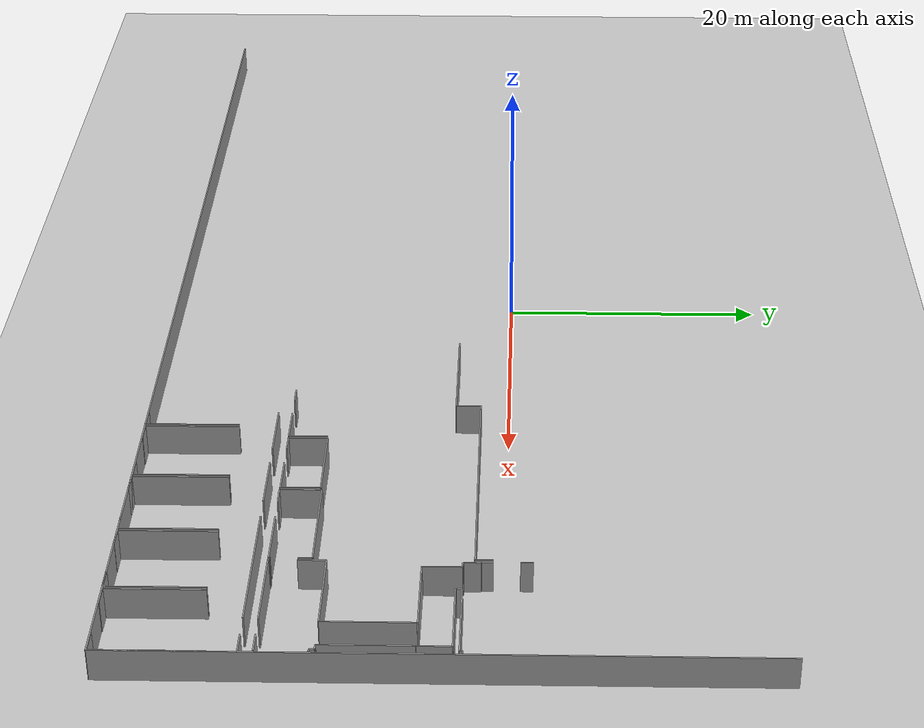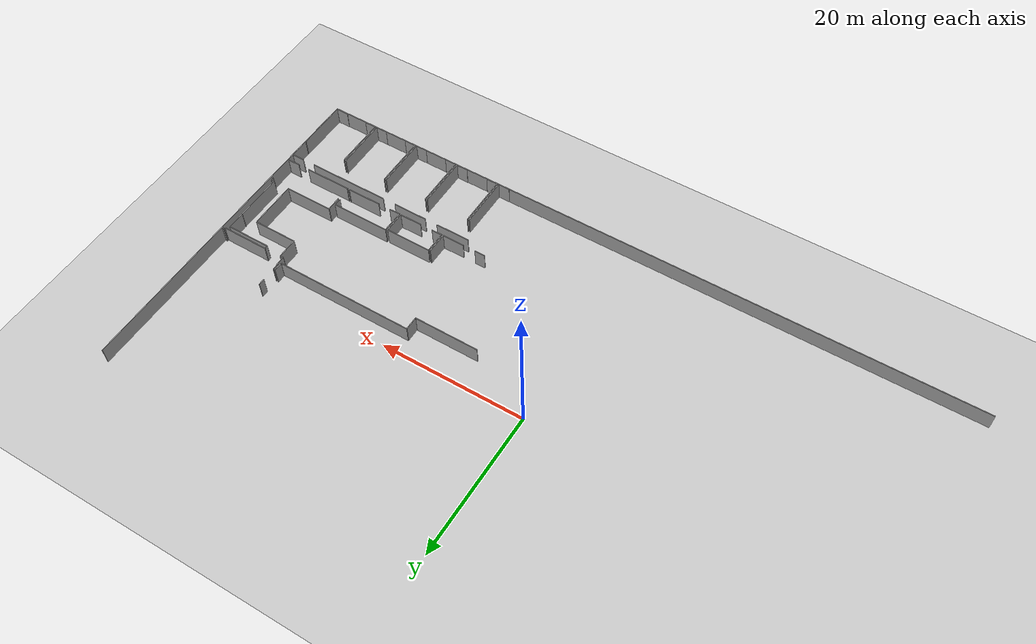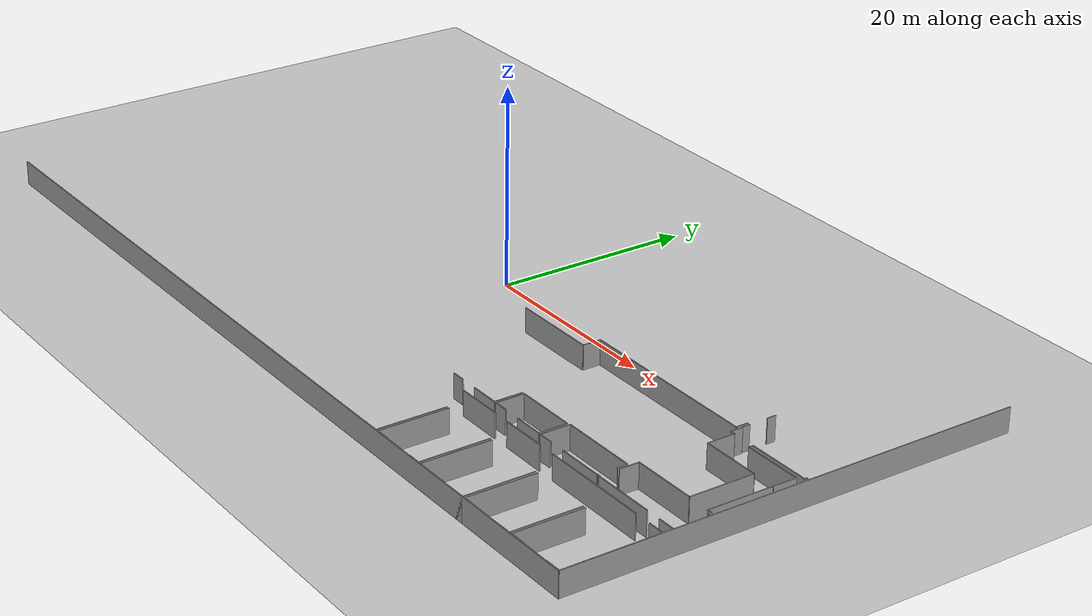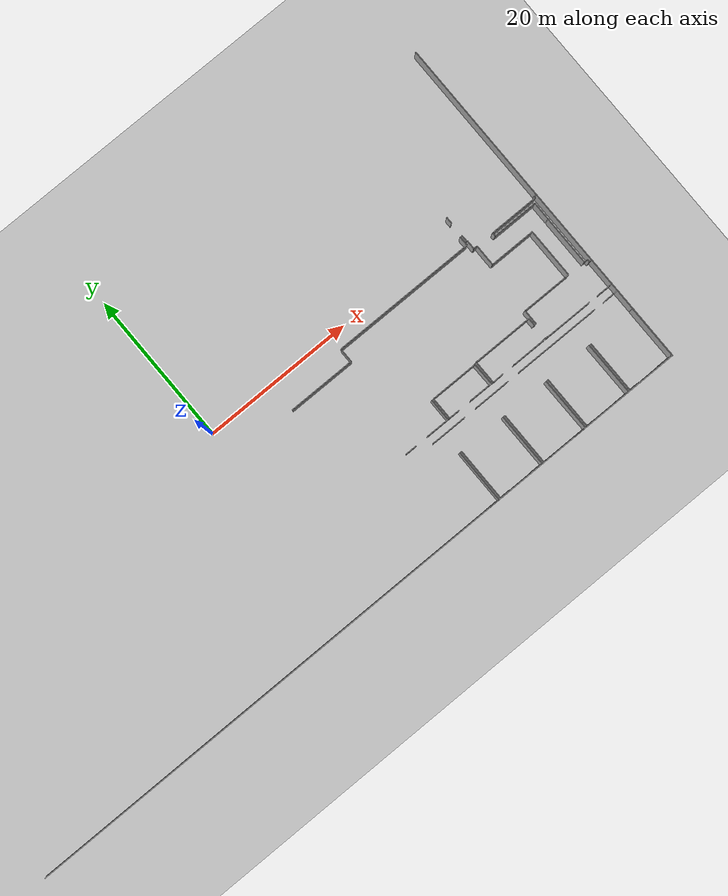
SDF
<sdf version="1.6">
 <world name="default">
  <model name="ground_plane">
   <static>1</static>
   <link name="link">
    <collision name="collision">
     <geometry><plane><normal>0 0 1</normal><size>100 100</size></plane></geometry>
     <surface><friction><ode><mu>100</mu><mu2>50</mu2></ode></friction></surface>
    </collision>
    <visual name="visual">
     <cast_shadows>0</cast_shadows>
     <geometry><plane><normal>0 0 1</normal><size>100 100</size></plane></geometry>
     <material>
      <script><uri>file://media/materials/scripts/gazebo.material</uri><name>Gazebo/Grey</name></script>
     </material>
    </visual>
   </link>
  </model>
  <model name="50045232">
   <static>1</static>
   <link name="Wall_223">
    <collision name="Wall_223_Collision">
     <geometry><box><size>4.76316875695 0.1 2.5</size></box></geometry>
     <pose>2.38158437847 0 1.25 0 0 0</pose>
    </collision>
    <visual name="Wall_223_Visual">
     <pose>2.38158437847 0 1.25 0 0 0</pose>
     <geometry><box><size>4.76316875695 0.1 2.5</size></box></geometry>
     <material>
      <script><uri>file://media/materials/scripts/gazebo.material</uri><name>Gazebo/Grey</name></script>
      <ambient>1 1 1 1</ambient>
     </material>
    </visual>
    <pose>65.7300523893 -36.6207969519 0 0 0 0.0</pose>
   </link>
   <link name="Wall_224">
    <collision name="Wall_224_Collision">
     <geometry><box><size>4.75377043975 0.1 2.5</size></box></geometry>
     <pose>2.37688521988 0 1.25 0 0 0</pose>
    </collision>
    <visual name="Wall_224_Visual">
     <pose>2.37688521988 0 1.25 0 0 0</pose>
     <geometry><box><size>4.75377043975 0.1 2.5</size></box></geometry>
     <material>
      <script><uri>file://media/materials/scripts/gazebo.material</uri><name>Gazebo/Grey</name></script>
      <ambient>1 1 1 1</ambient>
     </material>
    </visual>
    <pose>72.2602317828 -36.6207969519 0 0 0 0.0</pose>
   </link>
   <link name="Wall_225">
    <collision name="Wall_225_Collision">
     <geometry><box><size>11.2459755517 0.1 2.5</size></box></geometry>
     <pose>5.62298777584 0 1.25 0 0 0</pose>
    </collision>
    <visual name="Wall_225_Visual">
     <pose>5.62298777584 0 1.25 0 0 0</pose>
     <geometry><box><size>11.2459755517 0.1 2.5</size></box></geometry>
     <material>
      <script><uri>file://media/materials/scripts/gazebo.material</uri><name>Gazebo/Grey</name></script>
      <ambient>1 1 1 1</ambient>
     </material>
    </visual>
    <pose>78.8381647881 -36.6207969519 0 0 0 0.0</pose>
   </link>
   <link name="Wall_226">
    <collision name="Wall_226_Collision">
     <geometry><box><size>1.75596126369 0.1 2.5</size></box></geometry>
     <pose>0.877980631846 0 1.25 0 0 0</pose>
    </collision>
    <visual name="Wall_226_Visual">
     <pose>0.877980631846 0 1.25 0 0 0</pose>
     <geometry><box><size>1.75596126369 0.1 2.5</size></box></geometry>
     <material>
      <script><uri>file://media/materials/scripts/gazebo.material</uri><name>Gazebo/Grey</name></script>
      <ambient>1 1 1 1</ambient>
     </material>
    </visual>
    <pose>91.808858549 -36.6207969519 0 0 0 0.0</pose>
   </link>
   <link name="Wall_227">
    <collision name="Wall_227_Collision">
     <geometry><box><size>2.69071281156 0.1 2.5</size></box></geometry>
     <pose>1.34535640578 0 1.25 0 0 0</pose>
    </collision>
    <visual name="Wall_227_Visual">
     <pose>1.34535640578 0 1.25 0 0 0</pose>
     <geometry><box><size>2.69071281156 0.1 2.5</size></box></geometry>
     <material>
      <script><uri>file://media/materials/scripts/gazebo.material</uri><name>Gazebo/Grey</name></script>
      <ambient>1 1 1 1</ambient>
     </material>
    </visual>
    <pose>93.5648198127 -36.6207969519 0 0 0 -1.57079632679</pose>
   </link>
   <link name="Wall_249">
    <collision name="Wall_249_Collision">
     <geometry><box><size>1.59263375139 0.1 2.5</size></box></geometry>
     <pose>0.796316875695 0 1.25 0 0 0</pose>
    </collision>
    <visual name="Wall_249_Visual">
     <pose>0.796316875695 0 1.25 0 0 0</pose>
     <geometry><box><size>1.59263375139 0.1 2.5</size></box></geometry>
     <material>
      <script><uri>file://media/materials/scripts/gazebo.material</uri><name>Gazebo/Grey</name></script>
      <ambient>1 1 1 1</ambient>
     </material>
    </visual>
    <pose>67.3953325925 -46.4548658517 0 0 0 3.14159265359</pose>
   </link>
   <link name="Wall_252">
    <collision name="Wall_252_Collision">
     <geometry><box><size>7.06016828068 0.1 2.5</size></box></geometry>
     <pose>3.53008414034 0 1.25 0 0 0</pose>
    </collision>
    <visual name="Wall_252_Visual">
     <pose>3.53008414034 0 1.25 0 0 0</pose>
     <geometry><box><size>7.06016828068 0.1 2.5</size></box></geometry>
     <material>
      <script><uri>file://media/materials/scripts/gazebo.material</uri><name>Gazebo/Grey</name></script>
      <ambient>1 1 1 1</ambient>
     </material>
    </visual>
    <pose>67.3953325925 -39.394697571 0 0 0 -1.57079632679</pose>
   </link>
   <link name="Wall_253">
    <collision name="Wall_253_Collision">
     <geometry><box><size>1.5682489284 0.1 2.5</size></box></geometry>
     <pose>0.784124464201 0 1.25 0 0 0</pose>
    </collision>
    <visual name="Wall_253_Visual">
     <pose>0.784124464201 0 1.25 0 0 0</pose>
     <geometry><box><size>1.5682489284 0.1 2.5</size></box></geometry>
     <material>
      <script><uri>file://media/materials/scripts/gazebo.material</uri><name>Gazebo/Grey</name></script>
      <ambient>1 1 1 1</ambient>
     </material>
    </visual>
    <pose>73.9068423559 -46.4355612002 0 0 0 3.14159265359</pose>
   </link>
   <link name="Wall_254">
    <collision name="Wall_254_Collision">
     <geometry><box><size>1.57929830132 0.1 2.5</size></box></geometry>
     <pose>0.789649150659 0 1.25 0 0 0</pose>
    </collision>
    <visual name="Wall_254_Visual">
     <pose>0.789649150659 0 1.25 0 0 0</pose>
     <geometry><box><size>1.57929830132 0.1 2.5</size></box></geometry>
     <material>
      <script><uri>file://media/materials/scripts/gazebo.material</uri><name>Gazebo/Grey</name></script>
      <ambient>1 1 1 1</ambient>
     </material>
    </visual>
    <pose>69.2352436895 -46.4355612002 0 0 0 3.14159265359</pose>
   </link>
   <link name="Wall_255">
    <collision name="Wall_255_Collision">
     <geometry><box><size>7.05610414351 0.1 2.5</size></box></geometry>
     <pose>3.52805207176 0 1.25 0 0 0</pose>
    </collision>
    <visual name="Wall_255_Visual">
     <pose>3.52805207176 0 1.25 0 0 0</pose>
     <geometry><box><size>7.05610414351 0.1 2.5</size></box></geometry>
     <material>
      <script><uri>file://media/materials/scripts/gazebo.material</uri><name>Gazebo/Grey</name></script>
      <ambient>1 1 1 1</ambient>
     </material>
    </visual>
    <pose>67.6559453882 -46.4355612002 0 0 0 1.57079632679</pose>
   </link>
   <link name="Wall_256">
    <collision name="Wall_256_Collision">
     <geometry><box><size>7.05611797366 0.1 2.5</size></box></geometry>
     <pose>3.52805898683 0 1.25 0 0 0</pose>
    </collision>
    <visual name="Wall_256_Visual">
     <pose>3.52805898683 0 1.25 0 0 0</pose>
     <geometry><box><size>7.05611797366 0.1 2.5</size></box></geometry>
     <material>
      <script><uri>file://media/materials/scripts/gazebo.material</uri><name>Gazebo/Grey</name></script>
      <ambient>1 1 1 1</ambient>
     </material>
    </visual>
    <pose>73.8928718844 -39.3794570567 0 0 0 -1.5688164165</pose>
   </link>
   <link name="Wall_257">
    <collision name="Wall_257_Collision">
     <geometry><box><size>1.57739323702 0.1 2.5</size></box></geometry>
     <pose>0.788696618511 0 1.25 0 0 0</pose>
    </collision>
    <visual name="Wall_257_Visual">
     <pose>0.788696618511 0 1.25 0 0 0</pose>
     <geometry><box><size>1.57739323702 0.1 2.5</size></box></geometry>
     <material>
      <script><uri>file://media/materials/scripts/gazebo.material</uri><name>Gazebo/Grey</name></script>
      <ambient>1 1 1 1</ambient>
     </material>
    </visual>
    <pose>80.4272424194 -46.4701063661 0 0 0 3.14159265359</pose>
   </link>
   <link name="Wall_258">
    <collision name="Wall_258_Collision">
     <geometry><box><size>1.60482616288 0.1 2.5</size></box></geometry>
     <pose>0.802413081442 0 1.25 0 0 0</pose>
    </collision>
    <visual name="Wall_258_Visual">
     <pose>0.802413081442 0 1.25 0 0 0</pose>
     <geometry><box><size>1.60482616288 0.1 2.5</size></box></geometry>
     <material>
      <script><uri>file://media/materials/scripts/gazebo.material</uri><name>Gazebo/Grey</name></script>
      <ambient>1 1 1 1</ambient>
     </material>
    </visual>
    <pose>75.7698682331 -46.4701063661 0 0 0 3.14159265359</pose>
   </link>
   <link name="Wall_259">
    <collision name="Wall_259_Collision">
     <geometry><box><size>7.07515478647 0.1 2.5</size></box></geometry>
     <pose>3.53757739324 0 1.25 0 0 0</pose>
    </collision>
    <visual name="Wall_259_Visual">
     <pose>3.53757739324 0 1.25 0 0 0</pose>
     <geometry><box><size>7.07515478647 0.1 2.5</size></box></geometry>
     <material>
      <script><uri>file://media/materials/scripts/gazebo.material</uri><name>Gazebo/Grey</name></script>
      <ambient>1 1 1 1</ambient>
     </material>
    </visual>
    <pose>74.1650420702 -46.4701063661 0 0 0 1.57079632679</pose>
   </link>
   <link name="Wall_260">
    <collision name="Wall_260_Collision">
     <geometry><box><size>7.07526433104 0.1 2.5</size></box></geometry>
     <pose>3.53763216552 0 1.25 0 0 0</pose>
    </collision>
    <visual name="Wall_260_Visual">
     <pose>3.53763216552 0 1.25 0 0 0</pose>
     <geometry><box><size>7.07526433104 0.1 2.5</size></box></geometry>
     <material>
      <script><uri>file://media/materials/scripts/gazebo.material</uri><name>Gazebo/Grey</name></script>
      <ambient>1 1 1 1</ambient>
     </material>
    </visual>
    <pose>80.3878710906 -39.3949515796 0 0 0 -1.56523165385</pose>
   </link>
   <link name="Wall_261">
    <collision name="Wall_261_Collision">
     <geometry><box><size>1.57282108271 0.1 2.5</size></box></geometry>
     <pose>0.786410541356 0 1.25 0 0 0</pose>
    </collision>
    <visual name="Wall_261_Visual">
     <pose>0.786410541356 0 1.25 0 0 0</pose>
     <geometry><box><size>1.57282108271 0.1 2.5</size></box></geometry>
     <material>
      <script><uri>file://media/materials/scripts/gazebo.material</uri><name>Gazebo/Grey</name></script>
      <ambient>1 1 1 1</ambient>
     </material>
    </visual>
    <pose>86.9412922686 -46.4548658517 0 0 0 3.14159265359</pose>
   </link>
   <link name="Wall_262">
    <collision name="Wall_262_Collision">
     <geometry><box><size>1.60342911573 0.1 2.5</size></box></geometry>
     <pose>0.801714557866 0 1.25 0 0 0</pose>
    </collision>
    <visual name="Wall_262_Visual">
     <pose>0.801714557866 0 1.25 0 0 0</pose>
     <geometry><box><size>1.60342911573 0.1 2.5</size></box></geometry>
     <material>
      <script><uri>file://media/materials/scripts/gazebo.material</uri><name>Gazebo/Grey</name></script>
      <ambient>1 1 1 1</ambient>
     </material>
    </visual>
    <pose>82.2787109065 -46.4548658517 0 0 0 3.14159265359</pose>
   </link>
   <link name="Wall_263">
    <collision name="Wall_263_Collision">
     <geometry><box><size>7.07159866646 0.1 2.5</size></box></geometry>
     <pose>3.53579933323 0 1.25 0 0 0</pose>
    </collision>
    <visual name="Wall_263_Visual">
     <pose>3.53579933323 0 1.25 0 0 0</pose>
     <geometry><box><size>7.07159866646 0.1 2.5</size></box></geometry>
     <material>
      <script><uri>file://media/materials/scripts/gazebo.material</uri><name>Gazebo/Grey</name></script>
      <ambient>1 1 1 1</ambient>
     </material>
    </visual>
    <pose>80.6752817908 -46.4548658517 0 0 0 1.57079632679</pose>
   </link>
   <link name="Wall_264">
    <collision name="Wall_264_Collision">
     <geometry><box><size>7.07164292736 0.1 2.5</size></box></geometry>
     <pose>3.53582146368 0 1.25 0 0 0</pose>
    </collision>
    <visual name="Wall_264_Visual">
     <pose>3.53582146368 0 1.25 0 0 0</pose>
     <geometry><box><size>7.07164292736 0.1 2.5</size></box></geometry>
     <material>
      <script><uri>file://media/materials/scripts/gazebo.material</uri><name>Gazebo/Grey</name></script>
      <ambient>1 1 1 1</ambient>
     </material>
    </visual>
    <pose>86.9162724242 -39.3832671853 0 0 0 -1.56725826685</pose>
   </link>
   <link name="Wall_265">
    <collision name="Wall_265_Collision">
     <geometry><box><size>1.71176377203 0.1 2.5</size></box></geometry>
     <pose>0.855881886014 0 1.25 0 0 0</pose>
    </collision>
    <visual name="Wall_265_Visual">
     <pose>0.855881886014 0 1.25 0 0 0</pose>
     <geometry><box><size>1.71176377203 0.1 2.5</size></box></geometry>
     <material>
      <script><uri>file://media/materials/scripts/gazebo.material</uri><name>Gazebo/Grey</name></script>
      <ambient>1 1 1 1</ambient>
     </material>
    </visual>
    <pose>93.5537704398 -46.4245118273 0 0 0 3.14159265359</pose>
   </link>
   <link name="Wall_266">
    <collision name="Wall_266_Collision">
     <geometry><box><size>1.57231306557 0.1 2.5</size></box></geometry>
     <pose>0.786156532783 0 1.25 0 0 0</pose>
    </collision>
    <visual name="Wall_266_Visual">
     <pose>0.786156532783 0 1.25 0 0 0</pose>
     <geometry><box><size>1.57231306557 0.1 2.5</size></box></geometry>
     <material>
      <script><uri>file://media/materials/scripts/gazebo.material</uri><name>Gazebo/Grey</name></script>
      <ambient>1 1 1 1</ambient>
     </material>
    </visual>
    <pose>88.7625337355 -46.4245118273 0 0 0 3.14159265359</pose>
   </link>
   <link name="Wall_267">
    <collision name="Wall_267_Collision">
     <geometry><box><size>7.04391173202 0.1 2.5</size></box></geometry>
     <pose>3.52195586601 0 1.25 0 0 0</pose>
    </collision>
    <visual name="Wall_267_Visual">
     <pose>3.52195586601 0 1.25 0 0 0</pose>
     <geometry><box><size>7.04391173202 0.1 2.5</size></box></geometry>
     <material>
      <script><uri>file://media/materials/scripts/gazebo.material</uri><name>Gazebo/Grey</name></script>
      <ambient>1 1 1 1</ambient>
     </material>
    </visual>
    <pose>87.1902206699 -46.4245118273 0 0 0 1.57079632679</pose>
   </link>
   <link name="Wall_268">
    <collision name="Wall_268_Collision">
     <geometry><box><size>7.0439208013 0.1 2.5</size></box></geometry>
     <pose>3.52196040065 0 1.25 0 0 0</pose>
    </collision>
    <visual name="Wall_268_Visual">
     <pose>3.52196040065 0 1.25 0 0 0</pose>
     <geometry><box><size>7.0439208013 0.1 2.5</size></box></geometry>
     <material>
      <script><uri>file://media/materials/scripts/gazebo.material</uri><name>Gazebo/Grey</name></script>
      <ambient>1 1 1 1</ambient>
     </material>
    </visual>
    <pose>93.5424670583 -39.3806000953 0 0 0 -1.56919162585</pose>
   </link>
   <link name="Wall_269">
    <collision name="Wall_269_Collision">
     <geometry><box><size>0.101984441975 0.1 2.5</size></box></geometry>
     <pose>0.0509922209875 0 1.25 0 0 0</pose>
    </collision>
    <visual name="Wall_269_Visual">
     <pose>0.0509922209875 0 1.25 0 0 0</pose>
     <geometry><box><size>0.101984441975 0.1 2.5</size></box></geometry>
     <material>
      <script><uri>file://media/materials/scripts/gazebo.material</uri><name>Gazebo/Grey</name></script>
      <ambient>1 1 1 1</ambient>
     </material>
    </visual>
    <pose>83.8042863947 -35.595999365 0 0 0 1.57079632679</pose>
   </link>
   <link name="Wall_270">
    <collision name="Wall_270_Collision">
     <geometry><box><size>2.01250992221 0.1 2.5</size></box></geometry>
     <pose>1.0062549611 0 1.25 0 0 0</pose>
    </collision>
    <visual name="Wall_270_Visual">
     <pose>1.0062549611 0 1.25 0 0 0</pose>
     <geometry><box><size>2.01250992221 0.1 2.5</size></box></geometry>
     <material>
      <script><uri>file://media/materials/scripts/gazebo.material</uri><name>Gazebo/Grey</name></script>
      <ambient>1 1 1 1</ambient>
     </material>
    </visual>
    <pose>83.8042863947 -33.5912367042 0 0 0 1.57079632679</pose>
   </link>
   <link name="Wall_271">
    <collision name="Wall_271_Collision">
     <geometry><box><size>6.59101444674 0.1 2.5</size></box></geometry>
     <pose>3.29550722337 0 1.25 0 0 0</pose>
    </collision>
    <visual name="Wall_271_Visual">
     <pose>3.29550722337 0 1.25 0 0 0</pose>
     <geometry><box><size>6.59101444674 0.1 2.5</size></box></geometry>
     <material>
      <script><uri>file://media/materials/scripts/gazebo.material</uri><name>Gazebo/Grey</name></script>
      <ambient>1 1 1 1</ambient>
     </material>
    </visual>
    <pose>83.8042863947 -31.578726782 0 0 0 0.0</pose>
   </link>
   <link name="Wall_272">
    <collision name="Wall_272_Collision">
     <geometry><box><size>6.51138275917 0.1 2.5</size></box></geometry>
     <pose>3.25569137958 0 1.25 0 0 0</pose>
    </collision>
    <visual name="Wall_272_Visual">
     <pose>3.25569137958 0 1.25 0 0 0</pose>
     <geometry><box><size>6.51138275917 0.1 2.5</size></box></geometry>
     <material>
      <script><uri>file://media/materials/scripts/gazebo.material</uri><name>Gazebo/Grey</name></script>
      <ambient>1 1 1 1</ambient>
     </material>
    </visual>
    <pose>90.3953008414 -31.578726782 0 0 0 1.57079632679</pose>
   </link>
   <link name="Wall_273">
    <collision name="Wall_273_Collision">
     <geometry><box><size>6.54072074933 0.1 2.5</size></box></geometry>
     <pose>3.27036037466 0 1.25 0 0 0</pose>
    </collision>
    <visual name="Wall_273_Visual">
     <pose>3.27036037466 0 1.25 0 0 0</pose>
     <geometry><box><size>6.54072074933 0.1 2.5</size></box></geometry>
     <material>
      <script><uri>file://media/materials/scripts/gazebo.material</uri><name>Gazebo/Grey</name></script>
      <ambient>1 1 1 1</ambient>
     </material>
    </visual>
    <pose>92.7688839498 -25.0673440229 0 0 0 -1.57079632679</pose>
   </link>
   <link name="Wall_274">
    <collision name="Wall_274_Collision">
     <geometry><box><size>0.459120495317 0.1 2.5</size></box></geometry>
     <pose>0.229560247658 0 1.25 0 0 0</pose>
    </collision>
    <visual name="Wall_274_Visual">
     <pose>0.229560247658 0 1.25 0 0 0</pose>
     <geometry><box><size>0.459120495317 0.1 2.5</size></box></geometry>
     <material>
      <script><uri>file://media/materials/scripts/gazebo.material</uri><name>Gazebo/Grey</name></script>
      <ambient>1 1 1 1</ambient>
     </material>
    </visual>
    <pose>92.7688839498 -31.6080647722 0 0 0 0.0</pose>
   </link>
   <link name="Wall_275">
    <collision name="Wall_275_Collision">
     <geometry><box><size>0.368312430545 0.1 2.5</size></box></geometry>
     <pose>0.184156215272 0 1.25 0 0 0</pose>
    </collision>
    <visual name="Wall_275_Visual">
     <pose>0.184156215272 0 1.25 0 0 0</pose>
     <geometry><box><size>0.368312430545 0.1 2.5</size></box></geometry>
     <material>
      <script><uri>file://media/materials/scripts/gazebo.material</uri><name>Gazebo/Grey</name></script>
      <ambient>1 1 1 1</ambient>
     </material>
    </visual>
    <pose>93.2280044452 -31.6080647722 0 0 0 -1.57079632679</pose>
   </link>
   <link name="Wall_276">
    <collision name="Wall_276_Collision">
     <geometry><box><size>0.227337672646 0.1 2.5</size></box></geometry>
     <pose>0.113668836323 0 1.25 0 0 0</pose>
    </collision>
    <visual name="Wall_276_Visual">
     <pose>0.113668836323 0 1.25 0 0 0</pose>
     <geometry><box><size>0.227337672646 0.1 2.5</size></box></geometry>
     <material>
      <script><uri>file://media/materials/scripts/gazebo.material</uri><name>Gazebo/Grey</name></script>
      <ambient>1 1 1 1</ambient>
     </material>
    </visual>
    <pose>93.2280044452 -31.9763772027 0 0 0 0.0</pose>
   </link>
   <link name="Wall_277">
    <collision name="Wall_277_Collision">
     <geometry><box><size>1.69017304334 0.1 2.5</size></box></geometry>
     <pose>0.84508652167 0 1.25 0 0 0</pose>
    </collision>
    <visual name="Wall_277_Visual">
     <pose>0.84508652167 0 1.25 0 0 0</pose>
     <geometry><box><size>1.69017304334 0.1 2.5</size></box></geometry>
     <material>
      <script><uri>file://media/materials/scripts/gazebo.material</uri><name>Gazebo/Grey</name></script>
      <ambient>1 1 1 1</ambient>
     </material>
    </visual>
    <pose>93.4553421178 -35.5953643435 0 0 0 3.14159265359</pose>
   </link>
   <link name="Wall_278">
    <collision name="Wall_278_Collision">
     <geometry><box><size>6.39212576579 0.1 2.5</size></box></geometry>
     <pose>3.19606288289 0 1.25 0 0 0</pose>
    </collision>
    <visual name="Wall_278_Visual">
     <pose>3.19606288289 0 1.25 0 0 0</pose>
     <geometry><box><size>6.39212576579 0.1 2.5</size></box></geometry>
     <material>
      <script><uri>file://media/materials/scripts/gazebo.material</uri><name>Gazebo/Grey</name></script>
      <ambient>1 1 1 1</ambient>
     </material>
    </visual>
    <pose>90.1964121289 -35.5953643435 0 0 0 -3.14149330926</pose>
   </link>
   <link name="Wall_279">
    <collision name="Wall_279_Collision">
     <geometry><box><size>3.05915224639 0.1 2.5</size></box></geometry>
     <pose>1.52957612319 0 1.25 0 0 0</pose>
    </collision>
    <visual name="Wall_279_Visual">
     <pose>1.52957612319 0 1.25 0 0 0</pose>
     <geometry><box><size>3.05915224639 0.1 2.5</size></box></geometry>
     <material>
      <script><uri>file://media/materials/scripts/gazebo.material</uri><name>Gazebo/Grey</name></script>
      <ambient>1 1 1 1</ambient>
     </material>
    </visual>
    <pose>75.5965073821 -35.6125099222 0 0 0 1.57079632679</pose>
   </link>
   <link name="Wall_280">
    <collision name="Wall_280_Collision">
     <geometry><box><size>7.95161136688 0.1 2.5</size></box></geometry>
     <pose>3.97580568344 0 1.25 0 0 0</pose>
    </collision>
    <visual name="Wall_280_Visual">
     <pose>3.97580568344 0 1.25 0 0 0</pose>
     <geometry><box><size>7.95161136688 0.1 2.5</size></box></geometry>
     <material>
      <script><uri>file://media/materials/scripts/gazebo.material</uri><name>Gazebo/Grey</name></script>
      <ambient>1 1 1 1</ambient>
     </material>
    </visual>
    <pose>75.5965073821 -32.5533576758 0 0 0 0.0</pose>
   </link>
   <link name="Wall_281">
    <collision name="Wall_281_Collision">
     <geometry><box><size>1.01603429116 0.1 2.5</size></box></geometry>
     <pose>0.508017145579 0 1.25 0 0 0</pose>
    </collision>
    <visual name="Wall_281_Visual">
     <pose>0.508017145579 0 1.25 0 0 0</pose>
     <geometry><box><size>1.01603429116 0.1 2.5</size></box></geometry>
     <material>
      <script><uri>file://media/materials/scripts/gazebo.material</uri><name>Gazebo/Grey</name></script>
      <ambient>1 1 1 1</ambient>
     </material>
    </visual>
    <pose>83.548118749 -32.5533576758 0 0 0 -1.57079632679</pose>
   </link>
   <link name="Wall_282">
    <collision name="Wall_282_Collision">
     <geometry><box><size>0.114684870614 0.1 2.5</size></box></geometry>
     <pose>0.0573424353072 0 1.25 0 0 0</pose>
    </collision>
    <visual name="Wall_282_Visual">
     <pose>0.0573424353072 0 1.25 0 0 0</pose>
     <geometry><box><size>0.114684870614 0.1 2.5</size></box></geometry>
     <material>
      <script><uri>file://media/materials/scripts/gazebo.material</uri><name>Gazebo/Grey</name></script>
      <ambient>1 1 1 1</ambient>
     </material>
    </visual>
    <pose>83.548118749 -35.4665819971 0 0 0 -1.57079632679</pose>
   </link>
   <link name="Wall_283">
    <collision name="Wall_283_Collision">
     <geometry><box><size>4.74500714399 0.1 2.5</size></box></geometry>
     <pose>2.372503572 0 1.25 0 0 0</pose>
    </collision>
    <visual name="Wall_283_Visual">
     <pose>2.372503572 0 1.25 0 0 0</pose>
     <geometry><box><size>4.74500714399 0.1 2.5</size></box></geometry>
     <material>
      <script><uri>file://media/materials/scripts/gazebo.material</uri><name>Gazebo/Grey</name></script>
      <ambient>1 1 1 1</ambient>
     </material>
    </visual>
    <pose>83.548118749 -35.5812668678 0 0 0 3.14159265359</pose>
   </link>
   <link name="Wall_284">
    <collision name="Wall_284_Collision">
     <geometry><box><size>1.49529389098 0.1 2.5</size></box></geometry>
     <pose>0.747646945492 0 1.25 0 0 0</pose>
    </collision>
    <visual name="Wall_284_Visual">
     <pose>0.747646945492 0 1.25 0 0 0</pose>
     <geometry><box><size>1.49529389098 0.1 2.5</size></box></geometry>
     <material>
      <script><uri>file://media/materials/scripts/gazebo.material</uri><name>Gazebo/Grey</name></script>
      <ambient>1 1 1 1</ambient>
     </material>
    </visual>
    <pose>77.0914748373 -35.5812668678 0 0 0 -3.12069687625</pose>
   </link>
   <link name="Wall_285">
    <collision name="Wall_285_Collision">
     <geometry><box><size>3.08264803937 0.1 2.5</size></box></geometry>
     <pose>1.54132401969 0 1.25 0 0 0</pose>
    </collision>
    <visual name="Wall_285_Visual">
     <pose>1.54132401969 0 1.25 0 0 0</pose>
     <geometry><box><size>3.08264803937 0.1 2.5</size></box></geometry>
     <material>
      <script><uri>file://media/materials/scripts/gazebo.material</uri><name>Gazebo/Grey</name></script>
      <ambient>1 1 1 1</ambient>
     </material>
    </visual>
    <pose>75.352532148 -35.5708525163 0 0 0 3.14159265359</pose>
   </link>
   <link name="Wall_286">
    <collision name="Wall_286_Collision">
     <geometry><box><size>1.45013494205 0.1 2.5</size></box></geometry>
     <pose>0.725067471027 0 1.25 0 0 0</pose>
    </collision>
    <visual name="Wall_286_Visual">
     <pose>0.725067471027 0 1.25 0 0 0</pose>
     <geometry><box><size>1.45013494205 0.1 2.5</size></box></geometry>
     <material>
      <script><uri>file://media/materials/scripts/gazebo.material</uri><name>Gazebo/Grey</name></script>
      <ambient>1 1 1 1</ambient>
     </material>
    </visual>
    <pose>70.5125257977 -35.5708525163 0 0 0 3.14159265359</pose>
   </link>
   <link name="Wall_287">
    <collision name="Wall_287_Collision">
     <geometry><box><size>2.90763613272 0.1 2.5</size></box></geometry>
     <pose>1.45381806636 0 1.25 0 0 0</pose>
    </collision>
    <visual name="Wall_287_Visual">
     <pose>1.45381806636 0 1.25 0 0 0</pose>
     <geometry><box><size>2.90763613272 0.1 2.5</size></box></geometry>
     <material>
      <script><uri>file://media/materials/scripts/gazebo.material</uri><name>Gazebo/Grey</name></script>
      <ambient>1 1 1 1</ambient>
     </material>
    </visual>
    <pose>69.0623908557 -35.5708525163 0 0 0 1.57079632679</pose>
   </link>
   <link name="Wall_288">
    <collision name="Wall_288_Collision">
     <geometry><box><size>6.25724718209 0.1 2.5</size></box></geometry>
     <pose>3.12862359105 0 1.25 0 0 0</pose>
    </collision>
    <visual name="Wall_288_Visual">
     <pose>3.12862359105 0 1.25 0 0 0</pose>
     <geometry><box><size>6.25724718209 0.1 2.5</size></box></geometry>
     <material>
      <script><uri>file://media/materials/scripts/gazebo.material</uri><name>Gazebo/Grey</name></script>
      <ambient>1 1 1 1</ambient>
     </material>
    </visual>
    <pose>69.0623908557 -32.6632163836 0 0 0 0.0</pose>
   </link>
   <link name="Wall_289">
    <collision name="Wall_289_Collision">
     <geometry><box><size>2.90782219243 0.1 2.5</size></box></geometry>
     <pose>1.45391109621 0 1.25 0 0 0</pose>
    </collision>
    <visual name="Wall_289_Visual">
     <pose>1.45391109621 0 1.25 0 0 0</pose>
     <geometry><box><size>2.90782219243 0.1 2.5</size></box></geometry>
     <material>
      <script><uri>file://media/materials/scripts/gazebo.material</uri><name>Gazebo/Grey</name></script>
      <ambient>1 1 1 1</ambient>
     </material>
    </visual>
    <pose>75.3196380378 -32.6632163836 0 0 0 -1.55948380161</pose>
   </link>
   <link name="Wall_290">
    <collision name="Wall_290_Collision">
     <geometry><box><size>3.05305604064 0.1 2.5</size></box></geometry>
     <pose>1.52652802032 0 1.25 0 0 0</pose>
    </collision>
    <visual name="Wall_290_Visual">
     <pose>1.52652802032 0 1.25 0 0 0</pose>
     <geometry><box><size>3.05305604064 0.1 2.5</size></box></geometry>
     <material>
      <script><uri>file://media/materials/scripts/gazebo.material</uri><name>Gazebo/Grey</name></script>
      <ambient>1 1 1 1</ambient>
     </material>
    </visual>
    <pose>68.8133354501 -35.5750436577 0 0 0 3.14159265359</pose>
   </link>
   <link name="Wall_291">
    <collision name="Wall_291_Collision">
     <geometry><box><size>1.43629147484 0.1 2.5</size></box></geometry>
     <pose>0.718145737419 0 1.25 0 0 0</pose>
    </collision>
    <visual name="Wall_291_Visual">
     <pose>0.718145737419 0 1.25 0 0 0</pose>
     <geometry><box><size>1.43629147484 0.1 2.5</size></box></geometry>
     <material>
      <script><uri>file://media/materials/scripts/gazebo.material</uri><name>Gazebo/Grey</name></script>
      <ambient>1 1 1 1</ambient>
     </material>
    </visual>
    <pose>64.0156215272 -35.5750436577 0 0 0 3.14159265359</pose>
   </link>
   <link name="Wall_294">
    <collision name="Wall_294_Collision">
     <geometry><box><size>2.92745144893 0.1 2.5</size></box></geometry>
     <pose>1.46372572446 0 1.25 0 0 0</pose>
    </collision>
    <visual name="Wall_294_Visual">
     <pose>1.46372572446 0 1.25 0 0 0</pose>
     <geometry><box><size>2.92745144893 0.1 2.5</size></box></geometry>
     <material>
      <script><uri>file://media/materials/scripts/gazebo.material</uri><name>Gazebo/Grey</name></script>
      <ambient>1 1 1 1</ambient>
     </material>
    </visual>
    <pose>68.8172725829 -32.6475948563 0 0 0 -1.57214122837</pose>
   </link>
   <link name="Wall_326">
    <collision name="Wall_326_Collision">
     <geometry><box><size>6.01187490078 0.1 2.5</size></box></geometry>
     <pose>3.00593745039 0 1.25 0 0 0</pose>
    </collision>
    <visual name="Wall_326_Visual">
     <pose>3.00593745039 0 1.25 0 0 0</pose>
     <geometry><box><size>6.01187490078 0.1 2.5</size></box></geometry>
     <material>
      <script><uri>file://media/materials/scripts/gazebo.material</uri><name>Gazebo/Grey</name></script>
      <ambient>1 1 1 1</ambient>
     </material>
    </visual>
    <pose>90.3881886014 -25.0167963169 0 0 0 3.14159265359</pose>
   </link>
   <link name="Wall_327">
    <collision name="Wall_327_Collision">
     <geometry><box><size>2.81149388792 0.1 2.5</size></box></geometry>
     <pose>1.40574694396 0 1.25 0 0 0</pose>
    </collision>
    <visual name="Wall_327_Visual">
     <pose>1.40574694396 0 1.25 0 0 0</pose>
     <geometry><box><size>2.81149388792 0.1 2.5</size></box></geometry>
     <material>
      <script><uri>file://media/materials/scripts/gazebo.material</uri><name>Gazebo/Grey</name></script>
      <ambient>1 1 1 1</ambient>
     </material>
    </visual>
    <pose>84.3763137006 -25.0167963169 0 0 0 1.57079632679</pose>
   </link>
   <link name="Wall_328">
    <collision name="Wall_328_Collision">
     <geometry><box><size>0.47486902683 0.1 2.5</size></box></geometry>
     <pose>0.237434513415 0 1.25 0 0 0</pose>
    </collision>
    <visual name="Wall_328_Visual">
     <pose>0.237434513415 0 1.25 0 0 0</pose>
     <geometry><box><size>0.47486902683 0.1 2.5</size></box></geometry>
     <material>
      <script><uri>file://media/materials/scripts/gazebo.material</uri><name>Gazebo/Grey</name></script>
      <ambient>1 1 1 1</ambient>
     </material>
    </visual>
    <pose>84.3763137006 -22.205302429 0 0 0 3.14159265359</pose>
   </link>
   <link name="Wall_329">
    <collision name="Wall_329_Collision">
     <geometry><box><size>1.2368947452 0.1 2.5</size></box></geometry>
     <pose>0.618447372599 0 1.25 0 0 0</pose>
    </collision>
    <visual name="Wall_329_Visual">
     <pose>0.618447372599 0 1.25 0 0 0</pose>
     <geometry><box><size>1.2368947452 0.1 2.5</size></box></geometry>
     <material>
      <script><uri>file://media/materials/scripts/gazebo.material</uri><name>Gazebo/Grey</name></script>
      <ambient>1 1 1 1</ambient>
     </material>
    </visual>
    <pose>83.9014446738 -22.205302429 0 0 0 1.57079632679</pose>
   </link>
   <link name="Wall_330">
    <collision name="Wall_330_Collision">
     <geometry><box><size>0.077218606128 0.1 2.5</size></box></geometry>
     <pose>0.038609303064 0 1.25 0 0 0</pose>
    </collision>
    <visual name="Wall_330_Visual">
     <pose>0.038609303064 0 1.25 0 0 0</pose>
     <geometry><box><size>0.077218606128 0.1 2.5</size></box></geometry>
     <material>
      <script><uri>file://media/materials/scripts/gazebo.material</uri><name>Gazebo/Grey</name></script>
      <ambient>1 1 1 1</ambient>
     </material>
    </visual>
    <pose>83.9014446738 -20.9684076838 0 0 0 3.14159265359</pose>
   </link>
   <link name="Wall_331">
    <collision name="Wall_331_Collision">
     <geometry><box><size>0.839371328782 0.1 2.5</size></box></geometry>
     <pose>0.419685664391 0 1.25 0 0 0</pose>
    </collision>
    <visual name="Wall_331_Visual">
     <pose>0.419685664391 0 1.25 0 0 0</pose>
     <geometry><box><size>0.839371328782 0.1 2.5</size></box></geometry>
     <material>
      <script><uri>file://media/materials/scripts/gazebo.material</uri><name>Gazebo/Grey</name></script>
      <ambient>1 1 1 1</ambient>
     </material>
    </visual>
    <pose>83.8242260676 -20.9684076838 0 0 0 1.57079632679</pose>
   </link>
   <link name="Wall_332">
    <collision name="Wall_332_Collision">
     <geometry><box><size>0.893094141927 0.1 2.5</size></box></geometry>
     <pose>0.446547070964 0 1.25 0 0 0</pose>
    </collision>
    <visual name="Wall_332_Visual">
     <pose>0.446547070964 0 1.25 0 0 0</pose>
     <geometry><box><size>0.893094141927 0.1 2.5</size></box></geometry>
     <material>
      <script><uri>file://media/materials/scripts/gazebo.material</uri><name>Gazebo/Grey</name></script>
      <ambient>1 1 1 1</ambient>
     </material>
    </visual>
    <pose>83.8242260676 -18.2655024607 0 0 0 1.57079632679</pose>
   </link>
   <link name="Wall_335">
    <collision name="Wall_335_Collision">
     <geometry><box><size>0.22086045404 0.1 2.5</size></box></geometry>
     <pose>0.11043022702 0 1.25 0 0 0</pose>
    </collision>
    <visual name="Wall_335_Visual">
     <pose>0.11043022702 0 1.25 0 0 0</pose>
     <geometry><box><size>0.22086045404 0.1 2.5</size></box></geometry>
     <material>
      <script><uri>file://media/materials/scripts/gazebo.material</uri><name>Gazebo/Grey</name></script>
      <ambient>1 1 1 1</ambient>
     </material>
    </visual>
    <pose>93.4434037149 -21.973392602 0 0 0 3.14159265359</pose>
   </link>
   <link name="Wall_336">
    <collision name="Wall_336_Collision">
     <geometry><box><size>0.209811081124 0.1 2.5</size></box></geometry>
     <pose>0.104905540562 0 1.25 0 0 0</pose>
    </collision>
    <visual name="Wall_336_Visual">
     <pose>0.104905540562 0 1.25 0 0 0</pose>
     <geometry><box><size>0.209811081124 0.1 2.5</size></box></geometry>
     <material>
      <script><uri>file://media/materials/scripts/gazebo.material</uri><name>Gazebo/Grey</name></script>
      <ambient>1 1 1 1</ambient>
     </material>
    </visual>
    <pose>93.2225432608 -21.973392602 0 0 0 -1.57079632679</pose>
   </link>
   <link name="Wall_337">
    <collision name="Wall_337_Collision">
     <geometry><box><size>6.45118272742 0.1 2.5</size></box></geometry>
     <pose>3.22559136371 0 1.25 0 0 0</pose>
    </collision>
    <visual name="Wall_337_Visual">
     <pose>3.22559136371 0 1.25 0 0 0</pose>
     <geometry><box><size>6.45118272742 0.1 2.5</size></box></geometry>
     <material>
      <script><uri>file://media/materials/scripts/gazebo.material</uri><name>Gazebo/Grey</name></script>
      <ambient>1 1 1 1</ambient>
     </material>
    </visual>
    <pose>93.2225432608 -22.1832036831 0 0 0 3.14159265359</pose>
   </link>
   <link name="Wall_338">
    <collision name="Wall_338_Collision">
     <geometry><box><size>0.451881250992 0.1 2.5</size></box></geometry>
     <pose>0.225940625496 0 1.25 0 0 0</pose>
    </collision>
    <visual name="Wall_338_Visual">
     <pose>0.225940625496 0 1.25 0 0 0</pose>
     <geometry><box><size>0.451881250992 0.1 2.5</size></box></geometry>
     <material>
      <script><uri>file://media/materials/scripts/gazebo.material</uri><name>Gazebo/Grey</name></script>
      <ambient>1 1 1 1</ambient>
     </material>
    </visual>
    <pose>86.7713605334 -22.1832036831 0 0 0 -1.57079632679</pose>
   </link>
   <link name="Wall_339">
    <collision name="Wall_339_Collision">
     <geometry><box><size>6.01212890935 0.1 2.5</size></box></geometry>
     <pose>3.00606445468 0 1.25 0 0 0</pose>
    </collision>
    <visual name="Wall_339_Visual">
     <pose>3.00606445468 0 1.25 0 0 0</pose>
     <geometry><box><size>6.01212890935 0.1 2.5</size></box></geometry>
     <material>
      <script><uri>file://media/materials/scripts/gazebo.material</uri><name>Gazebo/Grey</name></script>
      <ambient>1 1 1 1</ambient>
     </material>
    </visual>
    <pose>86.7713605334 -22.6350849341 0 0 0 0.0</pose>
   </link>
   <link name="Wall_340">
    <collision name="Wall_340_Collision">
     <geometry><box><size>2.38172238462 0.1 2.5</size></box></geometry>
     <pose>1.19086119231 0 1.25 0 0 0</pose>
    </collision>
    <visual name="Wall_340_Visual">
     <pose>1.19086119231 0 1.25 0 0 0</pose>
     <geometry><box><size>2.38172238462 0.1 2.5</size></box></geometry>
     <material>
      <script><uri>file://media/materials/scripts/gazebo.material</uri><name>Gazebo/Grey</name></script>
      <ambient>1 1 1 1</ambient>
     </material>
    </visual>
    <pose>92.7834894428 -22.6350849341 0 0 0 -1.57383583111</pose>
   </link>
   <link name="Wall_383">
    <collision name="Wall_383_Collision">
     <geometry><box><size>1.25797745674 0.1 2.5</size></box></geometry>
     <pose>0.62898872837 0 1.25 0 0 0</pose>
    </collision>
    <visual name="Wall_383_Visual">
     <pose>0.62898872837 0 1.25 0 0 0</pose>
     <geometry><box><size>1.25797745674 0.1 2.5</size></box></geometry>
     <material>
      <script><uri>file://media/materials/scripts/gazebo.material</uri><name>Gazebo/Grey</name></script>
      <ambient>1 1 1 1</ambient>
     </material>
    </visual>
    <pose>83.5563740276 -20.1190030164 0 0 0 -1.57079632679</pose>
   </link>
   <link name="Wall_384">
    <collision name="Wall_384_Collision">
     <geometry><box><size>19.0313383077 0.1 2.5</size></box></geometry>
     <pose>9.51566915383 0 1.25 0 0 0</pose>
    </collision>
    <visual name="Wall_384_Visual">
     <pose>9.51566915383 0 1.25 0 0 0</pose>
     <geometry><box><size>19.0313383077 0.1 2.5</size></box></geometry>
     <material>
      <script><uri>file://media/materials/scripts/gazebo.material</uri><name>Gazebo/Grey</name></script>
      <ambient>1 1 1 1</ambient>
     </material>
    </visual>
    <pose>83.5563740276 -21.3769804731 0 0 0 3.14159265359</pose>
   </link>
   <link name="Wall_385">
    <collision name="Wall_385_Collision">
     <geometry><box><size>1.86150182569 0.1 2.5</size></box></geometry>
     <pose>0.930750912843 0 1.25 0 0 0</pose>
    </collision>
    <visual name="Wall_385_Visual">
     <pose>0.930750912843 0 1.25 0 0 0</pose>
     <geometry><box><size>1.86150182569 0.1 2.5</size></box></geometry>
     <material>
      <script><uri>file://media/materials/scripts/gazebo.material</uri><name>Gazebo/Grey</name></script>
      <ambient>1 1 1 1</ambient>
     </material>
    </visual>
    <pose>64.52503572 -21.3769804731 0 0 0 -1.57079632679</pose>
   </link>
   <link name="Wall_386">
    <collision name="Wall_386_Collision">
     <geometry><box><size>8.86489919035 0.1 2.5</size></box></geometry>
     <pose>4.43244959517 0 1.25 0 0 0</pose>
    </collision>
    <visual name="Wall_386_Visual">
     <pose>4.43244959517 0 1.25 0 0 0</pose>
     <geometry><box><size>8.86489919035 0.1 2.5</size></box></geometry>
     <material>
      <script><uri>file://media/materials/scripts/gazebo.material</uri><name>Gazebo/Grey</name></script>
      <ambient>1 1 1 1</ambient>
     </material>
    </visual>
    <pose>64.52503572 -23.2384822988 0 0 0 3.14159265359</pose>
   </link>
   <link name="Wall_391">
    <collision name="Wall_391_Collision">
     <geometry><box><size>46.4701063661 0.1 2.5</size></box></geometry>
     <pose>23.235053183 0 1.25 0 0 0</pose>
    </collision>
    <visual name="Wall_391_Visual">
     <pose>23.235053183 0 1.25 0 0 0</pose>
     <geometry><box><size>46.4701063661 0.1 2.5</size></box></geometry>
     <material>
      <script><uri>file://media/materials/scripts/gazebo.material</uri><name>Gazebo/Grey</name></script>
      <ambient>1 1 1 1</ambient>
     </material>
    </visual>
    <pose>93.5758691856 -46.4701063661 0 0 0 1.57079632679</pose>
   </link>
   <link name="Wall_392">
    <collision name="Wall_392_Collision">
     <geometry><box><size>93.5758691856 0.1 2.5</size></box></geometry>
     <pose>46.7879345928 0 1.25 0 0 0</pose>
    </collision>
    <visual name="Wall_392_Visual">
     <pose>46.7879345928 0 1.25 0 0 0</pose>
     <geometry><box><size>93.5758691856 0.1 2.5</size></box></geometry>
     <material>
      <script><uri>file://media/materials/scripts/gazebo.material</uri><name>Gazebo/Grey</name></script>
      <ambient>1 1 1 1</ambient>
     </material>
    </visual>
    <pose>93.5758691856 -46.4701063661 0 0 0 3.14159265359</pose>
   </link>
   <pose>-46.75 19.2201063661 0 0 0 0</pose>
  </model>
 </world>
</sdf>
